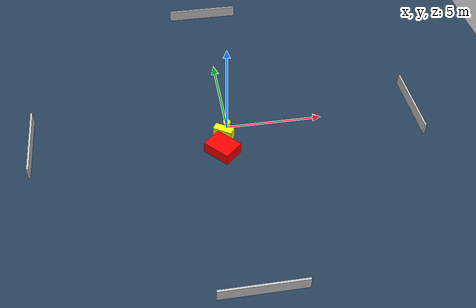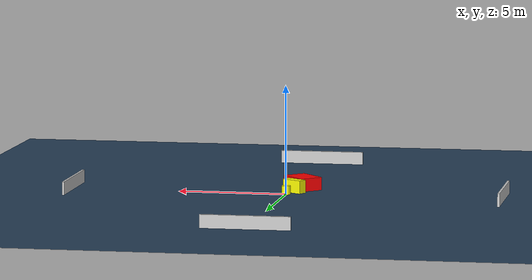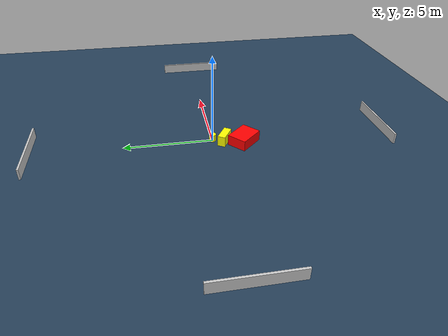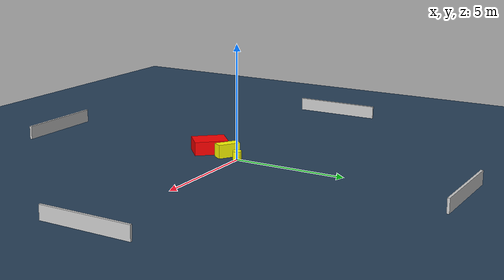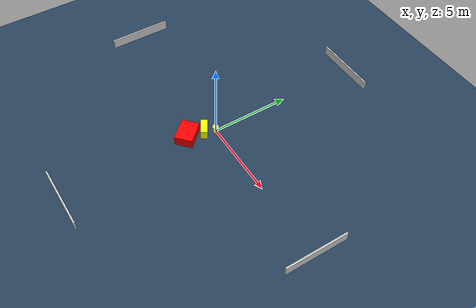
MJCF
<?xml version="1.0" ?>
<mujoco model="generated_environment">
  <option timestep="0.01" integrator="RK4" cone="elliptic"/>
  <default>
    <geom density="1"/>
  </default>
  <asset>
    <texture builtin="gradient" height="3072" name="skybox" rgb1="0.3 0.5 0.7" rgb2="0 0 0" type="skybox" width="512"/>
    <texture builtin="checker" height="300" name="groundplane" rgb1="0.2 0.3 0.4" rgb2="0.1 0.2 0.3" type="2d" width="300"/>
    <material name="groundplane" reflectance="0.2" texrepeat="5 5" texture="groundplane"/>
  </asset>
  <worldbody>
    <light dir="0 0 -1" directional="true" pos="0 0 1.5"/>
    <geom condim="3" friction="0.5 0.005 0.001" material="groundplane" name="floor" pos="0 0 0" size="0 0 0.05" type="plane"/>
    <body name="walls">
      <geom name="wall_1" condim="4" pos="-10.0 0.0 0.3" rgba="0.800000011920929 0.800000011920929 0.800000011920929 1.0" size="0.05 2.0 0.3" type="box"/>
      <geom name="wall_2" condim="4" pos="10.0 0.0 0.3" rgba="0.800000011920929 0.800000011920929 0.800000011920929 1.0" size="0.05 2.0 0.3" type="box"/>
      <geom name="wall_3" condim="4" pos="0.0 -10.0 0.3" rgba="0.800000011920929 0.800000011920929 0.800000011920929 1.0" size="2.0 0.05 0.3" type="box"/>
      <geom name="wall_4" condim="4" pos="0.0 10.0 0.3" rgba="0.800000011920929 0.800000011920929 0.800000011920929 1.0" size="2.0 0.05 0.3" type="box"/>
    </body>
    <body name="robot">
      <joint name="joint_x" type="slide" pos="0 0 0" axis="1 0 0"/>
      <joint name="joint_y" type="slide" pos="0 0 0" axis="0 1 0"/>
      <geom name="robot" type="cylinder" pos="0.0 0.0 0.2" size="0.2 0.2 0.0" mass="5.0" friction="1.0 0.005 0.0001" condim="4" rgba="1.0 1.0 0.0 1.0"/>
    </body>
    <body name="obstacle_1_movable">
      <geom name="obstacle_1_movable" condim="4" pos="-0.2661951212860438 -0.6502317350706462 0.3" euler="0 0 58.20604300902757" friction="0.0 0.005 0.001" rgba="1.0 1.0 0.0 1.0" size="0.2128122756720686 0.5071591463261851 0.3" type="box" mass="0.1"/>
      <joint type="free"/>
    </body>
    <body name="obstacle_2_static">
      <geom name="obstacle_2_static" condim="4" pos="-0.4850264718700051 -1.7105548560507036 0.3" euler="0 0 42.56704342650048" friction="0.0 0.005 0.001" rgba="1.0 0.0 0.0 1.0" size="0.5548918860124574 0.739976427237875 0.3" type="box"/>
    </body>
  </worldbody>
  <actuator>
    <motor name="actuator_x" joint="joint_x" gear="1" ctrlrange="-1 1"/>
    <motor name="actuator_y" joint="joint_y" gear="1" ctrlrange="-1 1"/>
  </actuator>
</mujoco>
